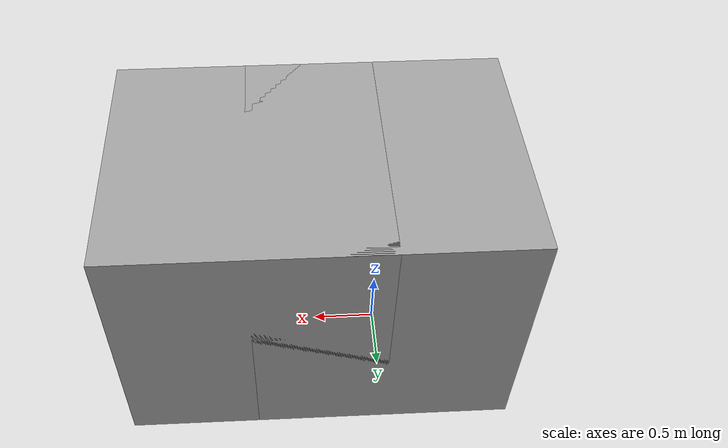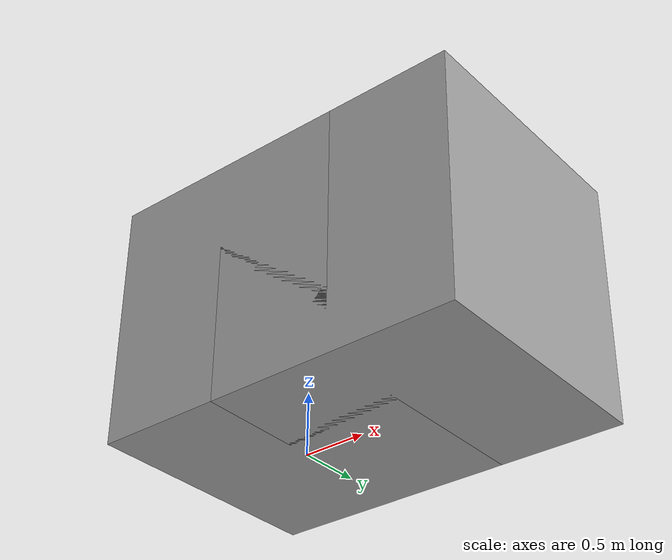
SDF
<?xml version='1.0'?>
<sdf version='1.6'>
  <!-- Note: The meshes in this file do not actually exist.
  This file is used for testing relative URIs -->
  <model name='relative_resource_uri'>
    <pose>0 0 1 0 0 0</pose>
    <link name='L1'>
      <visual name='V'>
        <geometry>
          <mesh>
            <uri>meshes/box.dae</uri>
          </mesh>
        </geometry>
      </visual>
      <visual name='V2'>
        <pose>1 0 0 0 0 0</pose>
        <geometry>
          <mesh>
            <uri>meshes/box.dae</uri>
          </mesh>
        </geometry>
      </visual>
      <collision name='C'>
        <geometry>
          <mesh>
            <uri>meshes/box.dae</uri>
          </mesh>
        </geometry>
      </collision>
      <collision name='C1'>
        <pose>1 0 0 0 0 0</pose>
        <geometry>
          <mesh>
            <uri>meshes/box.dae</uri>
          </mesh>
        </geometry>
      </collision>
    </link>
  </model>
</sdf>
